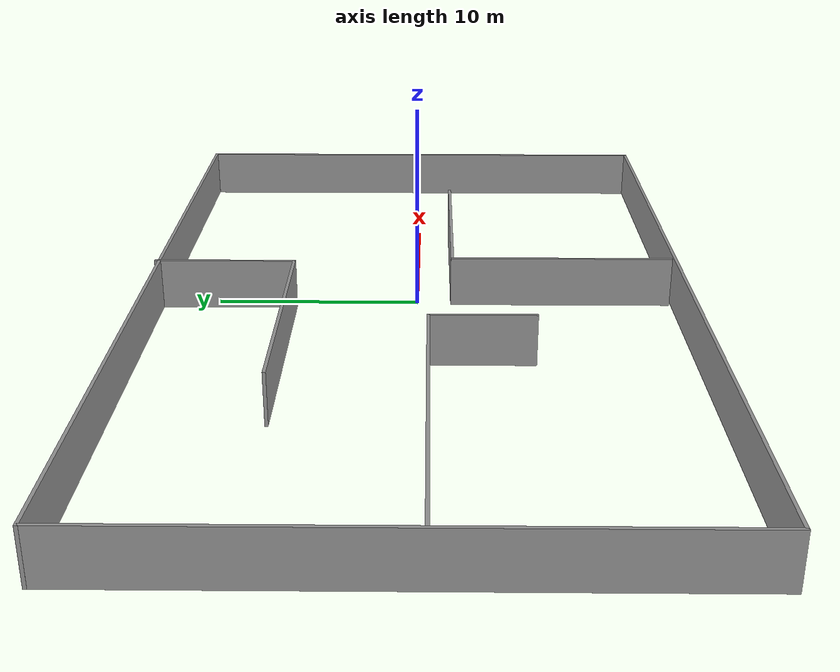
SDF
<?xml version='1.0'?>
<sdf version='1.7'>
  <model name='room'>
    <pose>-3.10712 0.08613 0 0 -0 0</pose>
    <link name='Wall_14'>
      <collision name='Wall_14_Collision'>
        <geometry>
          <box>
            <size>25.75 0.15 2.5</size>
          </box>
        </geometry>
        <pose>0 0 1.25 0 -0 0</pose>
      </collision>
      <visual name='Wall_14_Visual'>
        <pose>0 0 1.25 0 -0 0</pose>
        <geometry>
          <box>
            <size>25.75 0.15 2.5</size>
          </box>
        </geometry>
        <material>
          <script>
            <uri>file://media/materials/scripts/gazebo.material</uri>
            <name>Gazebo/Grey</name>
          </script>
          <ambient>1 1 1 1</ambient>
        </material>
        <meta>
          <layer>0</layer>
        </meta>
      </visual>
      <pose>-20.55 -0.083492 0 0 -0 -1.5708</pose>
    </link>
    <link name='Wall_15'>
      <collision name='Wall_15_Collision'>
        <geometry>
          <box>
            <size>41.25 0.15 2.5</size>
          </box>
        </geometry>
        <pose>0 0 1.25 0 -0 0</pose>
      </collision>
      <visual name='Wall_15_Visual'>
        <pose>0 0 1.25 0 -0 0</pose>
        <geometry>
          <box>
            <size>41.25 0.15 2.5</size>
          </box>
        </geometry>
        <material>
          <script>
            <uri>file://media/materials/scripts/gazebo.material</uri>
            <name>Gazebo/Grey</name>
          </script>
          <ambient>1 1 1 1</ambient>
        </material>
        <meta>
          <layer>0</layer>
        </meta>
      </visual>
      <pose>0 -12.8835 0 0 -0 0</pose>
    </link>
    <link name='Wall_16'>
      <collision name='Wall_16_Collision'>
        <geometry>
          <box>
            <size>25.75 0.15 2.5</size>
          </box>
        </geometry>
        <pose>0 0 1.25 0 -0 0</pose>
      </collision>
      <visual name='Wall_16_Visual'>
        <pose>0 0 1.25 0 -0 0</pose>
        <geometry>
          <box>
            <size>25.75 0.15 2.5</size>
          </box>
        </geometry>
        <material>
          <script>
            <uri>file://media/materials/scripts/gazebo.material</uri>
            <name>Gazebo/Grey</name>
          </script>
          <ambient>1 1 1 1</ambient>
        </material>
        <meta>
          <layer>0</layer>
        </meta>
      </visual>
      <pose>20.55 -0.083492 0 0 -0 1.5708</pose>
    </link>
    <link name='Wall_17'>
      <collision name='Wall_17_Collision'>
        <geometry>
          <box>
            <size>41.2508 0.15 2.5</size>
          </box>
        </geometry>
        <pose>0 0 1.25 0 -0 0</pose>
      </collision>
      <visual name='Wall_17_Visual'>
        <pose>0 0 1.25 0 -0 0</pose>
        <geometry>
          <box>
            <size>41.2508 0.15 2.5</size>
          </box>
        </geometry>
        <material>
          <script>
            <uri>file://media/materials/scripts/gazebo.material</uri>
            <name>Gazebo/Grey</name>
          </script>
          <ambient>1 1 1 1</ambient>
        </material>
        <meta>
          <layer>0</layer>
        </meta>
      </visual>
      <pose>0 12.7165 0 0 -0 3.14159</pose>
    </link>
    <link name='Wall_19'>
      <collision name='Wall_19_Collision'>
        <geometry>
          <box>
            <size>7 0.15 2.5</size>
          </box>
        </geometry>
        <pose>0 0 1.25 0 -0 0</pose>
      </collision>
      <visual name='Wall_19_Visual'>
        <pose>0 0 1.25 0 -0 0</pose>
        <geometry>
          <box>
            <size>7 0.15 2.5</size>
          </box>
        </geometry>
        <material>
          <script>
            <uri>file://media/materials/scripts/gazebo.material</uri>
            <name>Gazebo/Grey</name>
          </script>
          <ambient>1 1 1 1</ambient>
        </material>
        <meta>
          <layer>0</layer>
        </meta>
      </visual>
      <pose>2.55012 9.45849 0 0 -0 -1.5708</pose>
    </link>
    <link name='Wall_20'>
      <collision name='Wall_20_Collision'>
        <geometry>
          <box>
            <size>12.25 0.15 2.5</size>
          </box>
        </geometry>
        <pose>0 0 1.25 0 -0 0</pose>
      </collision>
      <visual name='Wall_20_Visual'>
        <pose>0 0 1.25 0 -0 0</pose>
        <geometry>
          <box>
            <size>12.25 0.15 2.5</size>
          </box>
        </geometry>
        <material>
          <script>
            <uri>file://media/materials/scripts/gazebo.material</uri>
            <name>Gazebo/Grey</name>
          </script>
          <ambient>1 1 1 1</ambient>
        </material>
        <meta>
          <layer>0</layer>
        </meta>
      </visual>
      <pose>-3.49988 6.03349 0 0 -0 3.14159</pose>
    </link>
    <link name='Wall_22'>
      <collision name='Wall_22_Collision'>
        <geometry>
          <box>
            <size>16.75 0.15 2.5</size>
          </box>
        </geometry>
        <pose>0 0 1.25 0 -0 0</pose>
      </collision>
      <visual name='Wall_22_Visual'>
        <pose>0 0 1.25 0 -0 0</pose>
        <geometry>
          <box>
            <size>16.75 0.15 2.5</size>
          </box>
        </geometry>
        <material>
          <script>
            <uri>file://media/materials/scripts/gazebo.material</uri>
            <name>Gazebo/Grey</name>
          </script>
          <ambient>1 1 1 1</ambient>
        </material>
        <meta>
          <layer>0</layer>
        </meta>
      </visual>
      <pose>-12.1568 -0.625152 0 0 -0 0</pose>
    </link>
    <link name='Wall_23'>
      <collision name='Wall_23_Collision'>
        <geometry>
          <box>
            <size>5 0.15 2.5</size>
          </box>
        </geometry>
        <pose>0 0 1.25 0 -0 0</pose>
      </collision>
      <visual name='Wall_23_Visual'>
        <pose>0 0 1.25 0 -0 0</pose>
        <geometry>
          <box>
            <size>5 0.15 2.5</size>
          </box>
        </geometry>
        <material>
          <script>
            <uri>file://media/materials/scripts/gazebo.material</uri>
            <name>Gazebo/Grey</name>
          </script>
          <ambient>1 1 1 1</ambient>
        </material>
        <meta>
          <layer>0</layer>
        </meta>
      </visual>
      <pose>-3.85679 -3.05015 0 0 -0 -1.5708</pose>
    </link>
    <link name='Wall_25'>
      <collision name='Wall_25_Collision'>
        <geometry>
          <box>
            <size>11 0.15 2.5</size>
          </box>
        </geometry>
        <pose>0 0 1.25 0 -0 0</pose>
      </collision>
      <visual name='Wall_25_Visual'>
        <pose>0 0 1.25 0 -0 0</pose>
        <geometry>
          <box>
            <size>11 0.15 2.5</size>
          </box>
        </geometry>
        <material>
          <script>
            <uri>file://media/materials/scripts/gazebo.material</uri>
            <name>Gazebo/Grey</name>
          </script>
          <ambient>1 1 1 1</ambient>
        </material>
        <meta>
          <layer>0</layer>
        </meta>
      </visual>
      <pose>2.97226 -7.23129 0 0 -0 1.5708</pose>
    </link>
    <link name='Wall_26'>
      <collision name='Wall_26_Collision'>
        <geometry>
          <box>
            <size>10.75 0.15 2.5</size>
          </box>
        </geometry>
        <pose>0 0 1.25 0 -0 0</pose>
      </collision>
      <visual name='Wall_26_Visual'>
        <pose>0 0 1.25 0 -0 0</pose>
        <geometry>
          <box>
            <size>10.75 0.15 2.5</size>
          </box>
        </geometry>
        <material>
          <script>
            <uri>file://media/materials/scripts/gazebo.material</uri>
            <name>Gazebo/Grey</name>
          </script>
          <ambient>1 1 1 1</ambient>
        </material>
        <meta>
          <layer>0</layer>
        </meta>
      </visual>
      <pose>8.27226 -1.80629 0 0 -0 0</pose>
    </link>
    <static>1</static>
  </model>
</sdf>
